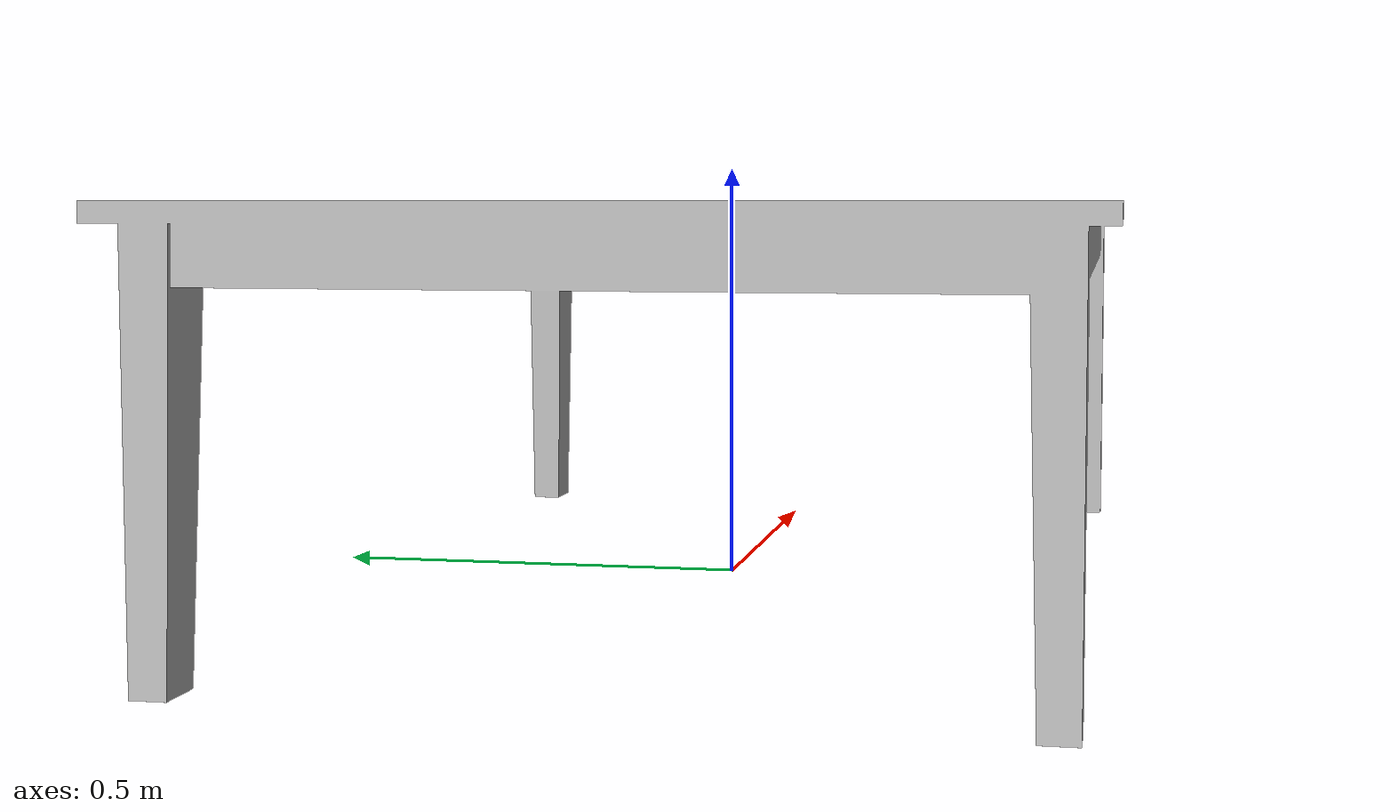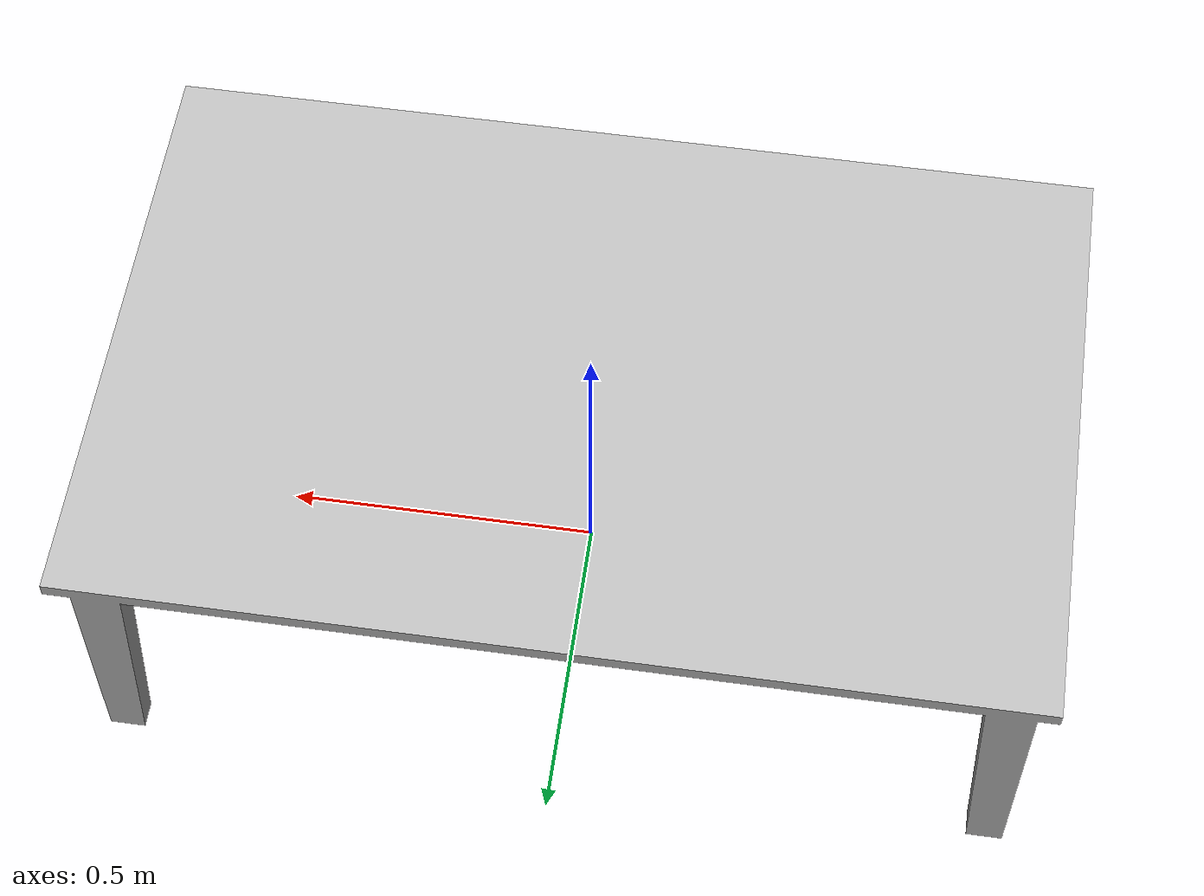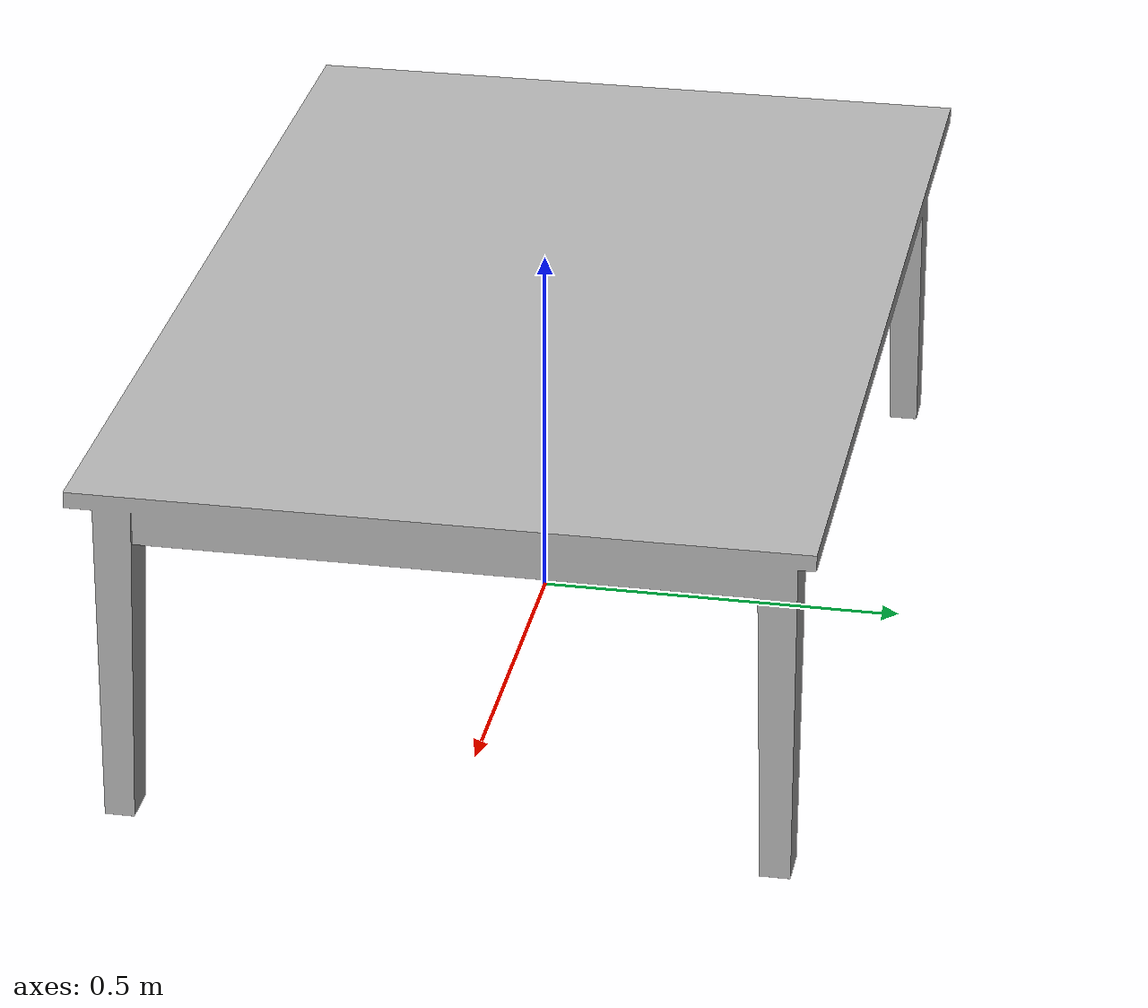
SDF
<?xml version="1.0"?>
<sdf version="1.7">
  <model name="table1">
    <pose>0 0 0 0 0 0</pose>
    <link name="link">
      <inertial>
        <mass>465.761941848</mass>
        <inertia>
          <ixx>43.71275963060977</ixx>
          <ixy>0.0</ixy>
          <ixz>0.0</ixz>
          <iyy>93.4153171959324</iyy>
          <iyz>0.0</iyz>
          <izz>119.64297297429827</izz>
        </inertia>
      </inertial>
      <collision name="collision">
        <pose>0.0 0.0 0.22460000000000002 0 0 0</pose>
        <geometry>
          <box>
            <size>1.4769999999999999 0.9492 0.4746</size>
          </box>
        </geometry>
      </collision>
      <visual name="box_visual">
        <geometry>
          <mesh>
            <uri>model.obj</uri>
            <scale>0.01 0.01 0.01</scale>
          </mesh>
        </geometry>
      </visual>
    </link>
  </model>
</sdf>
